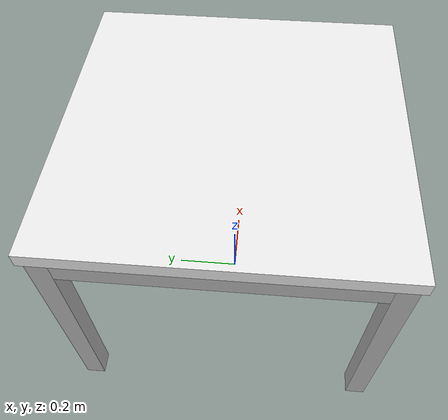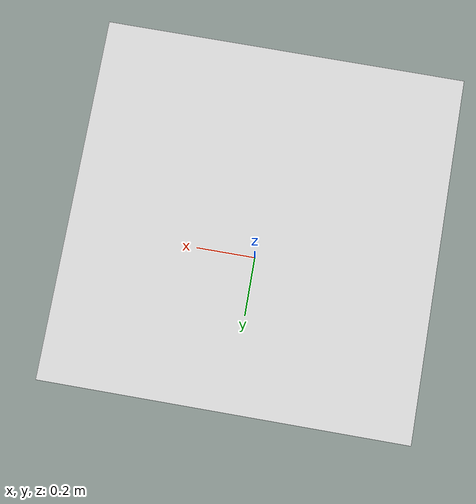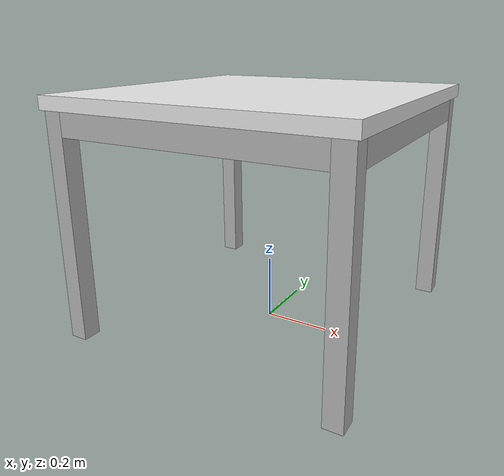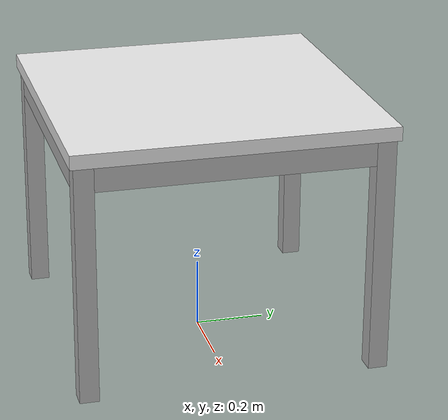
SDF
<?xml version='1.0'?>
<sdf version='1.6'>
  <model name='table_ikea_bjursta'>
    <link name='table_top_link'>
      <pose frame=''>0 0 0 0 -0 0</pose>
      <inertial>
        <pose frame=''>0 0 0.338095 0 -0 0</pose>
        <mass>21</mass>
        <inertia>
          <ixx>3.4229</ixx>
          <ixy>0</ixy>
          <ixz>0</ixz>
          <iyy>3.4229</iyy>
          <iyz>0</iyz>
          <izz>4.82335</izz>
        </inertia>
      </inertial>
      <self_collide>0</self_collide>
      <kinematic>0</kinematic>
      <velocity_decay/>
      <visual name='table_top_link_visual'>
        <pose frame=''>0 0 0.72 0 -0 0</pose>
        <geometry>
          <box>
            <size>0.9 0.9 0.04</size>
          </box>
        </geometry>
        <material>
          <script>
            <name>Gazebo/White</name>
            <uri>file://media/materials/scripts/gazebo.material</uri>
          </script>
          <ambient>1 1 1 1</ambient>
          <diffuse>1 1 1 1</diffuse>
          <specular>0 0 0 1</specular>
          <emissive>0 0 0 1</emissive>
        </material>
        <cast_shadows>1</cast_shadows>
        <transparency>0</transparency>
      </visual>
      <visual name='table_top_link_fixed_joint_lump__lath_left_back_link_visual_1'>
        <pose frame=''>-0.43 0 0.665 0 -0 0</pose>
        <geometry>
          <box>
            <size>0.02 0.77 0.07</size>
          </box>
        </geometry>
        <cast_shadows>1</cast_shadows>
        <transparency>0</transparency>
      </visual>
      <visual name='table_top_link_fixed_joint_lump__lath_left_front_link_visual_2'>
        <pose frame=''>0.43 0 0.665 0 -0 0</pose>
        <geometry>
          <box>
            <size>0.02 0.77 0.07</size>
          </box>
        </geometry>
        <cast_shadows>1</cast_shadows>
        <transparency>0</transparency>
      </visual>
      <visual name='table_top_link_fixed_joint_lump__lath_right_back_link_visual_3'>
        <pose frame=''>0 -0.43 0.665 0 -0 0</pose>
        <geometry>
          <box>
            <size>0.77 0.02 0.07</size>
          </box>
        </geometry>
        <cast_shadows>1</cast_shadows>
        <transparency>0</transparency>
      </visual>
      <visual name='table_top_link_fixed_joint_lump__lath_right_front_link_visual_4'>
        <pose frame=''>0 0.43 0.665 0 -0 0</pose>
        <geometry>
          <box>
            <size>0.77 0.02 0.07</size>
          </box>
        </geometry>
        <cast_shadows>1</cast_shadows>
        <transparency>0</transparency>
      </visual>
      <visual name='table_top_link_fixed_joint_lump__leg_left_back_link_visual_5'>
        <pose frame=''>-0.4125 0.4125 0.37 0 -0 0</pose>
        <geometry>
          <box>
            <size>0.055 0.055 0.7</size>
          </box>
        </geometry>
        <cast_shadows>1</cast_shadows>
        <transparency>0</transparency>
      </visual>
      <visual name='table_top_link_fixed_joint_lump__leg_left_front_link_visual_6'>
        <pose frame=''>0.4125 0.4125 0.37 0 -0 0</pose>
        <geometry>
          <box>
            <size>0.055 0.055 0.7</size>
          </box>
        </geometry>
        <cast_shadows>1</cast_shadows>
        <transparency>0</transparency>
      </visual>
      <visual name='table_top_link_fixed_joint_lump__leg_right_back_link_visual_7'>
        <pose frame=''>-0.4125 -0.4125 0.37 0 -0 0</pose>
        <geometry>
          <box>
            <size>0.055 0.055 0.7</size>
          </box>
        </geometry>
        <cast_shadows>1</cast_shadows>
        <transparency>0</transparency>
      </visual>
      <visual name='table_top_link_fixed_joint_lump__leg_right_front_link_visual_8'>
        <pose frame=''>0.4125 -0.4125 0.37 0 -0 0</pose>
        <geometry>
          <box>
            <size>0.055 0.055 0.7</size>
          </box>
        </geometry>
        <cast_shadows>1</cast_shadows>
        <transparency>0</transparency>
      </visual>
      <collision name='table_top_link_collision'>
        <laser_retro>0</laser_retro>
        <max_contacts>10</max_contacts>
        <pose frame=''>0 0 0.72 0 -0 0</pose>
        <geometry>
          <box>
            <size>0.9 0.9 0.04</size>
          </box>
        </geometry>
        <surface>
          <friction>
            <ode>
              <mu>50</mu>
              <mu2>50</mu2>
              <fdir1>0 0 0</fdir1>
              <slip1>0</slip1>
              <slip2>0</slip2>
            </ode>
            <torsional>
              <coefficient>1</coefficient>
              <patch_radius>0</patch_radius>
              <surface_radius>0</surface_radius>
              <use_patch_radius>1</use_patch_radius>
              <ode>
                <slip>0</slip>
              </ode>
            </torsional>
          </friction>
          <bounce>
            <restitution_coefficient>0</restitution_coefficient>
            <threshold>1e+06</threshold>
          </bounce>
          <contact>
            <collide_without_contact>0</collide_without_contact>
            <collide_without_contact_bitmask>1</collide_without_contact_bitmask>
            <collide_bitmask>1</collide_bitmask>
            <ode>
              <soft_cfm>0</soft_cfm>
              <soft_erp>0.2</soft_erp>
              <kp>1e+06</kp>
              <kd>1</kd>
              <max_vel>0.01</max_vel>
              <min_depth>0</min_depth>
            </ode>
            <bullet>
              <split_impulse>1</split_impulse>
              <split_impulse_penetration_threshold>-0.01</split_impulse_penetration_threshold>
              <soft_cfm>0</soft_cfm>
              <soft_erp>0.2</soft_erp>
              <kp>1e+06</kp>
              <kd>1</kd>
            </bullet>
          </contact>
        </surface>
      </collision>
      <collision name='table_top_link_fixed_joint_lump__lath_left_front_link_collision_2'>
        <laser_retro>0</laser_retro>
        <max_contacts>10</max_contacts>
        <pose frame=''>0.43 0 0.665 0 -0 0</pose>
        <geometry>
          <box>
            <size>0.02 0.77 0.07</size>
          </box>
        </geometry>
        <surface>
          <friction>
            <ode>
              <mu>1</mu>
              <mu2>1</mu2>
              <fdir1>0 0 0</fdir1>
              <slip1>0</slip1>
              <slip2>0</slip2>
            </ode>
            <torsional>
              <coefficient>1</coefficient>
              <patch_radius>0</patch_radius>
              <surface_radius>0</surface_radius>
              <use_patch_radius>1</use_patch_radius>
              <ode>
                <slip>0</slip>
              </ode>
            </torsional>
          </friction>
          <bounce>
            <restitution_coefficient>0</restitution_coefficient>
            <threshold>1e+06</threshold>
          </bounce>
          <contact>
            <collide_without_contact>0</collide_without_contact>
            <collide_without_contact_bitmask>1</collide_without_contact_bitmask>
            <collide_bitmask>1</collide_bitmask>
            <ode>
              <soft_cfm>0</soft_cfm>
              <soft_erp>0.2</soft_erp>
              <kp>1e+13</kp>
              <kd>1</kd>
              <max_vel>0.01</max_vel>
              <min_depth>0</min_depth>
            </ode>
            <bullet>
              <split_impulse>1</split_impulse>
              <split_impulse_penetration_threshold>-0.01</split_impulse_penetration_threshold>
              <soft_cfm>0</soft_cfm>
              <soft_erp>0.2</soft_erp>
              <kp>1e+13</kp>
              <kd>1</kd>
            </bullet>
          </contact>
        </surface>
      </collision>
      <collision name='table_top_link_fixed_joint_lump__lath_left_back_link_collision_1'>
        <laser_retro>0</laser_retro>
        <max_contacts>10</max_contacts>
        <pose frame=''>-0.43 0 0.665 0 -0 0</pose>
        <geometry>
          <box>
            <size>0.02 0.77 0.07</size>
          </box>
        </geometry>
        <surface>
          <friction>
            <ode>
              <mu>1</mu>
              <mu2>1</mu2>
              <fdir1>0 0 0</fdir1>
              <slip1>0</slip1>
              <slip2>0</slip2>
            </ode>
            <torsional>
              <coefficient>1</coefficient>
              <patch_radius>0</patch_radius>
              <surface_radius>0</surface_radius>
              <use_patch_radius>1</use_patch_radius>
              <ode>
                <slip>0</slip>
              </ode>
            </torsional>
          </friction>
          <bounce>
            <restitution_coefficient>0</restitution_coefficient>
            <threshold>1e+06</threshold>
          </bounce>
          <contact>
            <collide_without_contact>0</collide_without_contact>
            <collide_without_contact_bitmask>1</collide_without_contact_bitmask>
            <collide_bitmask>1</collide_bitmask>
            <ode>
              <soft_cfm>0</soft_cfm>
              <soft_erp>0.2</soft_erp>
              <kp>1e+13</kp>
              <kd>1</kd>
              <max_vel>0.01</max_vel>
              <min_depth>0</min_depth>
            </ode>
            <bullet>
              <split_impulse>1</split_impulse>
              <split_impulse_penetration_threshold>-0.01</split_impulse_penetration_threshold>
              <soft_cfm>0</soft_cfm>
              <soft_erp>0.2</soft_erp>
              <kp>1e+13</kp>
              <kd>1</kd>
            </bullet>
          </contact>
        </surface>
      </collision>
      <collision name='table_top_link_fixed_joint_lump__lath_right_front_link_collision_4'>
        <laser_retro>0</laser_retro>
        <max_contacts>10</max_contacts>
        <pose frame=''>0 0.43 0.665 0 -0 0</pose>
        <geometry>
          <box>
            <size>0.77 0.02 0.07</size>
          </box>
        </geometry>
        <surface>
          <friction>
            <ode>
              <mu>1</mu>
              <mu2>1</mu2>
              <fdir1>0 0 0</fdir1>
              <slip1>0</slip1>
              <slip2>0</slip2>
            </ode>
            <torsional>
              <coefficient>1</coefficient>
              <patch_radius>0</patch_radius>
              <surface_radius>0</surface_radius>
              <use_patch_radius>1</use_patch_radius>
              <ode>
                <slip>0</slip>
              </ode>
            </torsional>
          </friction>
          <bounce>
            <restitution_coefficient>0</restitution_coefficient>
            <threshold>1e+06</threshold>
          </bounce>
          <contact>
            <collide_without_contact>0</collide_without_contact>
            <collide_without_contact_bitmask>1</collide_without_contact_bitmask>
            <collide_bitmask>1</collide_bitmask>
            <ode>
              <soft_cfm>0</soft_cfm>
              <soft_erp>0.2</soft_erp>
              <kp>1e+13</kp>
              <kd>1</kd>
              <max_vel>0.01</max_vel>
              <min_depth>0</min_depth>
            </ode>
            <bullet>
              <split_impulse>1</split_impulse>
              <split_impulse_penetration_threshold>-0.01</split_impulse_penetration_threshold>
              <soft_cfm>0</soft_cfm>
              <soft_erp>0.2</soft_erp>
              <kp>1e+13</kp>
              <kd>1</kd>
            </bullet>
          </contact>
        </surface>
      </collision>
      <collision name='table_top_link_fixed_joint_lump__lath_right_back_link_collision_3'>
        <laser_retro>0</laser_retro>
        <max_contacts>10</max_contacts>
        <pose frame=''>0 -0.43 0.665 0 -0 0</pose>
        <geometry>
          <box>
            <size>0.77 0.02 0.07</size>
          </box>
        </geometry>
        <surface>
          <friction>
            <ode>
              <mu>1</mu>
              <mu2>1</mu2>
              <fdir1>0 0 0</fdir1>
              <slip1>0</slip1>
              <slip2>0</slip2>
            </ode>
            <torsional>
              <coefficient>1</coefficient>
              <patch_radius>0</patch_radius>
              <surface_radius>0</surface_radius>
              <use_patch_radius>1</use_patch_radius>
              <ode>
                <slip>0</slip>
              </ode>
            </torsional>
          </friction>
          <bounce>
            <restitution_coefficient>0</restitution_coefficient>
            <threshold>1e+06</threshold>
          </bounce>
          <contact>
            <collide_without_contact>0</collide_without_contact>
            <collide_without_contact_bitmask>1</collide_without_contact_bitmask>
            <collide_bitmask>1</collide_bitmask>
            <ode>
              <soft_cfm>0</soft_cfm>
              <soft_erp>0.2</soft_erp>
              <kp>1e+13</kp>
              <kd>1</kd>
              <max_vel>0.01</max_vel>
              <min_depth>0</min_depth>
            </ode>
            <bullet>
              <split_impulse>1</split_impulse>
              <split_impulse_penetration_threshold>-0.01</split_impulse_penetration_threshold>
              <soft_cfm>0</soft_cfm>
              <soft_erp>0.2</soft_erp>
              <kp>1e+13</kp>
              <kd>1</kd>
            </bullet>
          </contact>
        </surface>
      </collision>
      <collision name='table_top_link_fixed_joint_lump__leg_left_back_link_collision_5'>
        <laser_retro>0</laser_retro>
        <max_contacts>10</max_contacts>
        <pose frame=''>-0.4125 0.4125 0.37 0 -0 0</pose>
        <geometry>
          <box>
            <size>0.055 0.055 0.7</size>
          </box>
        </geometry>
        <surface>
          <friction>
            <ode>
              <mu>1</mu>
              <mu2>1</mu2>
              <fdir1>0 0 0</fdir1>
              <slip1>0</slip1>
              <slip2>0</slip2>
            </ode>
            <torsional>
              <coefficient>1</coefficient>
              <patch_radius>0</patch_radius>
              <surface_radius>0</surface_radius>
              <use_patch_radius>1</use_patch_radius>
              <ode>
                <slip>0</slip>
              </ode>
            </torsional>
          </friction>
          <bounce>
            <restitution_coefficient>0</restitution_coefficient>
            <threshold>1e+06</threshold>
          </bounce>
          <contact>
            <collide_without_contact>0</collide_without_contact>
            <collide_without_contact_bitmask>1</collide_without_contact_bitmask>
            <collide_bitmask>1</collide_bitmask>
            <ode>
              <soft_cfm>0</soft_cfm>
              <soft_erp>0.2</soft_erp>
              <kp>1e+13</kp>
              <kd>1</kd>
              <max_vel>0.01</max_vel>
              <min_depth>0</min_depth>
            </ode>
            <bullet>
              <split_impulse>1</split_impulse>
              <split_impulse_penetration_threshold>-0.01</split_impulse_penetration_threshold>
              <soft_cfm>0</soft_cfm>
              <soft_erp>0.2</soft_erp>
              <kp>1e+13</kp>
              <kd>1</kd>
            </bullet>
          </contact>
        </surface>
      </collision>
      <collision name='table_top_link_fixed_joint_lump__leg_right_back_link_collision_7'>
        <laser_retro>0</laser_retro>
        <max_contacts>10</max_contacts>
        <pose frame=''>-0.4125 -0.4125 0.37 0 -0 0</pose>
        <geometry>
          <box>
            <size>0.055 0.055 0.7</size>
          </box>
        </geometry>
        <surface>
          <friction>
            <ode>
              <mu>1</mu>
              <mu2>1</mu2>
              <fdir1>0 0 0</fdir1>
              <slip1>0</slip1>
              <slip2>0</slip2>
            </ode>
            <torsional>
              <coefficient>1</coefficient>
              <patch_radius>0</patch_radius>
              <surface_radius>0</surface_radius>
              <use_patch_radius>1</use_patch_radius>
              <ode>
                <slip>0</slip>
              </ode>
            </torsional>
          </friction>
          <bounce>
            <restitution_coefficient>0</restitution_coefficient>
            <threshold>1e+06</threshold>
          </bounce>
          <contact>
            <collide_without_contact>0</collide_without_contact>
            <collide_without_contact_bitmask>1</collide_without_contact_bitmask>
            <collide_bitmask>1</collide_bitmask>
            <ode>
              <soft_cfm>0</soft_cfm>
              <soft_erp>0.2</soft_erp>
              <kp>1e+13</kp>
              <kd>1</kd>
              <max_vel>0.01</max_vel>
              <min_depth>0</min_depth>
            </ode>
            <bullet>
              <split_impulse>1</split_impulse>
              <split_impulse_penetration_threshold>-0.01</split_impulse_penetration_threshold>
              <soft_cfm>0</soft_cfm>
              <soft_erp>0.2</soft_erp>
              <kp>1e+13</kp>
              <kd>1</kd>
            </bullet>
          </contact>
        </surface>
      </collision>
      <collision name='table_top_link_fixed_joint_lump__leg_left_front_link_collision_6'>
        <laser_retro>0</laser_retro>
        <max_contacts>10</max_contacts>
        <pose frame=''>0.4125 0.4125 0.37 0 -0 0</pose>
        <geometry>
          <box>
            <size>0.055 0.055 0.7</size>
          </box>
        </geometry>
        <surface>
          <friction>
            <ode>
              <mu>1</mu>
              <mu2>1</mu2>
              <fdir1>0 0 0</fdir1>
              <slip1>0</slip1>
              <slip2>0</slip2>
            </ode>
            <torsional>
              <coefficient>1</coefficient>
              <patch_radius>0</patch_radius>
              <surface_radius>0</surface_radius>
              <use_patch_radius>1</use_patch_radius>
              <ode>
                <slip>0</slip>
              </ode>
            </torsional>
          </friction>
          <bounce>
            <restitution_coefficient>0</restitution_coefficient>
            <threshold>1e+06</threshold>
          </bounce>
          <contact>
            <collide_without_contact>0</collide_without_contact>
            <collide_without_contact_bitmask>1</collide_without_contact_bitmask>
            <collide_bitmask>1</collide_bitmask>
            <ode>
              <soft_cfm>0</soft_cfm>
              <soft_erp>0.2</soft_erp>
              <kp>1e+13</kp>
              <kd>1</kd>
              <max_vel>0.01</max_vel>
              <min_depth>0</min_depth>
            </ode>
            <bullet>
              <split_impulse>1</split_impulse>
              <split_impulse_penetration_threshold>-0.01</split_impulse_penetration_threshold>
              <soft_cfm>0</soft_cfm>
              <soft_erp>0.2</soft_erp>
              <kp>1e+13</kp>
              <kd>1</kd>
            </bullet>
          </contact>
        </surface>
      </collision>
      <collision name='table_top_link_fixed_joint_lump__leg_right_front_link_collision_8'>
        <laser_retro>0</laser_retro>
        <max_contacts>10</max_contacts>
        <pose frame=''>0.4125 -0.4125 0.37 0 -0 0</pose>
        <geometry>
          <box>
            <size>0.055 0.055 0.7</size>
          </box>
        </geometry>
        <surface>
          <friction>
            <ode>
              <mu>1</mu>
              <mu2>1</mu2>
              <fdir1>0 0 0</fdir1>
              <slip1>0</slip1>
              <slip2>0</slip2>
            </ode>
            <torsional>
              <coefficient>1</coefficient>
              <patch_radius>0</patch_radius>
              <surface_radius>0</surface_radius>
              <use_patch_radius>1</use_patch_radius>
              <ode>
                <slip>0</slip>
              </ode>
            </torsional>
          </friction>
          <bounce>
            <restitution_coefficient>0</restitution_coefficient>
            <threshold>1e+06</threshold>
          </bounce>
          <contact>
            <collide_without_contact>0</collide_without_contact>
            <collide_without_contact_bitmask>1</collide_without_contact_bitmask>
            <collide_bitmask>1</collide_bitmask>
            <ode>
              <soft_cfm>0</soft_cfm>
              <soft_erp>0.2</soft_erp>
              <kp>1e+13</kp>
              <kd>1</kd>
              <max_vel>0.01</max_vel>
              <min_depth>0</min_depth>
            </ode>
            <bullet>
              <split_impulse>1</split_impulse>
              <split_impulse_penetration_threshold>-0.01</split_impulse_penetration_threshold>
              <soft_cfm>0</soft_cfm>
              <soft_erp>0.2</soft_erp>
              <kp>1e+13</kp>
              <kd>1</kd>
            </bullet>
          </contact>
        </surface>
      </collision>
    </link>
    <static>1</static>
    <allow_auto_disable>1</allow_auto_disable>
  </model>
</sdf>
